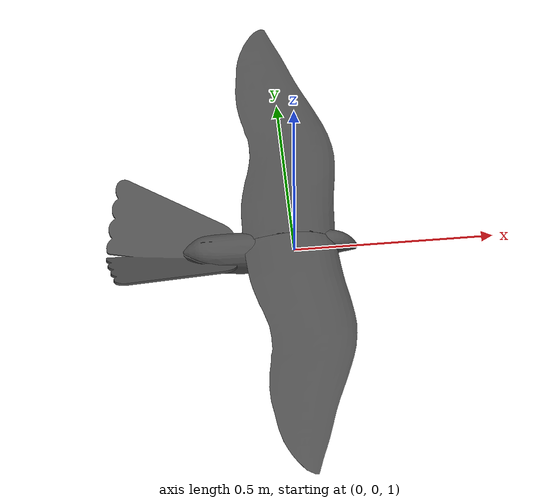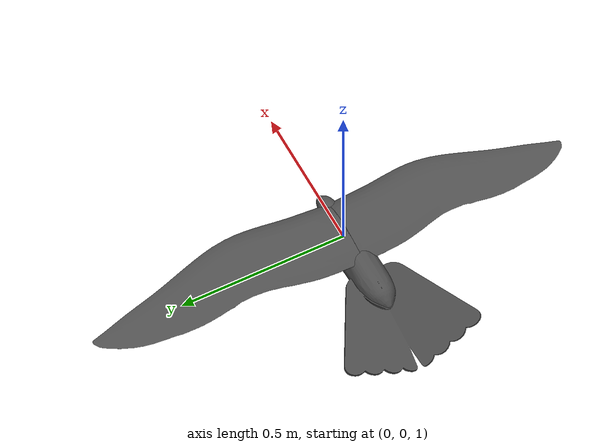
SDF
<?xml version="1.0"?>
<sdf version='1.5'>
  <model name='flapping_wing'>
    <pose>0 0 1 0 0 0</pose>
    <link name='base_link'>
      <pose>0 0 0 0 0 0</pose>
      <inertial>
        <pose>0 0 0 0 0 0</pose>
        <mass>0.28</mass>
        <inertia>
          <ixx>0.197563</ixx>
          <ixy>0</ixy>
          <ixz>0</ixz>
          <iyy>0.1458929</iyy>
          <iyz>0</iyz>
          <izz>0.1477</izz>
        </inertia>
      </inertial>
      <collision name='base_link_collision'>
        <geometry>
          <box>
            <size>0.5 0.125 0.156</size>
          </box>
        </geometry>
        <surface>
          <contact>
            <ode>
              <max_vel>15</max_vel>
              <min_depth>0.01</min_depth>
            </ode>
          </contact>
        </surface>
      </collision>
      <visual name='base_link_visual'>
        <geometry>
          <mesh>
            <scale>1 1 1</scale>
            <uri>model://flapping_wing/meshes/fuselage3.DAE</uri>
          </mesh>
        </geometry>
        <material>
          <script>
            <name>Gazebo/DarkGrey</name>
            <uri>__default__</uri>
          </script>
        </material>
      </visual>
      <gravity>1</gravity>
      <velocity_decay/>
      <self_collide>0</self_collide>
    </link>

    <link name='flapping_wing/imu_link'>
      <pose>0 0 0 0 0 0</pose>
      <inertial>
        <pose>0 0 0 0 0 0</pose>
        <mass>0.015</mass>
        <inertia>
          <ixx>1e-05</ixx>
          <ixy>0</ixy>
          <ixz>0</ixz>
          <iyy>1e-05</iyy>
          <iyz>0</iyz>
          <izz>1e-05</izz>
        </inertia>
      </inertial>
    </link>
    <joint name='flapping_wing/imu_joint' type='revolute'>
      <child>flapping_wing/imu_link</child>
      <parent>base_link</parent>
      <axis>
        <xyz>1 0 0</xyz>
        <limit>
          <lower>0</lower>
          <upper>0</upper>
          <effort>0</effort>
          <velocity>0</velocity>
        </limit>
        <dynamics>
          <spring_reference>0</spring_reference>
          <spring_stiffness>0</spring_stiffness>
        </dynamics>
        <use_parent_model_frame>1</use_parent_model_frame>
      </axis>
    </joint>

    <link name='right_wing'>
      <pose>0.10 -0.0 0.03 0 0 0</pose>
      <inertial>
        <pose>0 0 0 0 0 0</pose>
        <mass>0.00001</mass>
        <inertia>
          <ixx>0.00003</ixx>
          <ixy>0</ixy>
          <ixz>0</ixz>
          <iyy>0.001</iyy>
          <iyz>0</iyz>
          <izz>0.0000001</izz>
        </inertia>
      </inertial>
      <collision name='right_wing_collision'>
        <geometry>
          <box>
            <size>0.3 1.77 0.04</size>
          </box>
        </geometry>
      </collision>
      <visual name='right_wing_visual'>
        <geometry>
          <mesh>
            <scale>1 1 1</scale>
            <uri>model://flapping_wing/meshes/right_wing.DAE</uri>
          </mesh>
        </geometry>
        <material>
          <script>
            <name>Gazebo/DarkGrey</name>
            <uri>__default__</uri>
          </script>
        </material>
      </visual>
    </link>
    <joint name='right_wing_joint' type='revolute'>
      <child>right_wing</child>
      <parent>base_link</parent>
      <pose>0.00 0 0.00 0 0 0</pose>
      <axis>
        <xyz>1 0 0</xyz>
        <limit>
          <lower>-0.3</lower>
          <upper>0.3</upper>
        </limit>
        <dynamics>
          <damping>1.000</damping>
        </dynamics>
      </axis>
      <physics>
        <ode>
          <implicit_spring_damper>1</implicit_spring_damper>
        </ode>
      </physics>
    </joint>
    <link name='left_wing'>
      <pose>0.10 -0.0 0.03 0 0 0</pose>
      <inertial>
        <pose>0 0 0 0 0 0</pose>
        <mass>0.000001</mass>
        <inertia>
          <ixx>0.00003</ixx>
          <ixy>0</ixy>
          <ixz>0</ixz>
          <iyy>0.001</iyy>
          <iyz>0</iyz>
          <izz>0.0000001</izz>
        </inertia>
      </inertial>
      <collision name='left_wing_collision'>
        <geometry>
          <box>
            <size>0.3 1.77 0.04</size>
          </box>
        </geometry>
      </collision>
      <visual name='left_wing_visual'>
        <geometry>
          <mesh>
            <scale>1 1 1</scale>
            <uri>model://flapping_wing/meshes/left_wing.DAE</uri>
          </mesh>
        </geometry>
        <material>
          <script>
            <name>Gazebo/DarkGrey</name>
            <uri>__default__</uri>
          </script>
        </material>
      </visual>
    </link>
    <joint name='left_wing_joint' type='revolute'>
      <child>left_wing</child>
      <parent>base_link</parent>
      <pose>0.00 0 0.00 0 0 0</pose>
      <axis>
        <xyz>1 0 0</xyz>
        <limit>
          <lower>-0.3</lower>
          <upper>0.3</upper>
        </limit>
        <dynamics>
          <damping>1.000</damping>
        </dynamics>
      </axis>
      <physics>
        <ode>
          <implicit_spring_damper>1</implicit_spring_damper>
        </ode>
      </physics>
    </joint>

    <link name='tail'>
      <pose>0.05 0.0 -0.05 3.95 0.2 0.07</pose>
      <inertial>
        <pose>0 0 0 0 0 0</pose>
        <mass>0.000001</mass>
        <inertia>
          <ixx>0.00003</ixx>
          <ixy>0</ixy>
          <ixz>0</ixz>
          <iyy>0.001</iyy>
          <iyz>0</iyz>
          <izz>0.0000001</izz>
        </inertia>
      </inertial>
      <visual name='tail_visual'>
        <geometry>
          <mesh>
            <scale>1 1 1</scale>
            <uri>model://flapping_wing/meshes/tail.DAE</uri>
          </mesh>
        </geometry>
        <material>
          <script>
            <name>Gazebo/DarkGrey</name>
            <uri>__default__</uri>
          </script>
        </material>
      </visual>
    </link>
    <joint name='tail_joint' type='revolute'>
      <child>tail</child>
      <parent>base_link</parent>
      <pose>0.00 0 0.00 0 0 0</pose>
      <axis>
        <xyz>1 0 0</xyz>
        <limit>
          <lower>-0</lower>
          <upper>0</upper>
        </limit>
        <dynamics>
          <damping>1.000</damping>
        </dynamics>
      </axis>
      <physics>
        <ode>
          <implicit_spring_damper>1</implicit_spring_damper>
        </ode>
      </physics>
    </joint>

    <link name='virtual_left_tail'>
      <pose>-0.1 0.0 0.1 -0.05 0 0 0</pose>
      <inertial>
        <mass>0.00000001</mass>
        <inertia>
          <ixx>0.000001</ixx>
          <ixy>0.0</ixy>
          <iyy>0.000001</iyy>
          <ixz>0.0</ixz>
          <iyz>0.0</iyz>
          <izz>0.000001</izz>
        </inertia>
      </inertial>
    </link>
    <joint name='virtual_left_tail_joint' type='revolute'>
      <child>virtual_left_tail</child>
      <parent>base_link</parent>
      <pose>0.00 0 0.00 0 0 0</pose>
      <axis>
        <xyz>1 0 0</xyz>
        <limit>
          <lower>-0.3</lower>
          <upper>0.3</upper>
        </limit>
        <dynamics>
          <damping>1.000</damping>
        </dynamics>
      </axis>
      <physics>
        <ode>
          <implicit_spring_damper>1</implicit_spring_damper>
        </ode>
      </physics>
    </joint>
    <link name='virtual_right_tail'>
      <pose>-0.1 0.0 0.1 -0.05 0 0 0</pose>
      <inertial>
        <mass>0.00000001</mass>
        <inertia>
          <ixx>0.000001</ixx>
          <ixy>0.0</ixy>
          <iyy>0.000001</iyy>
          <ixz>0.0</ixz>
          <iyz>0.0</iyz>
          <izz>0.000001</izz>
        </inertia>
      </inertial>
    </link>
    <joint name='virtual_right_tail_joint' type='revolute'>
      <child>virtual_right_tail</child>
      <parent>base_link</parent>
      <pose>0.00 0 0.00 0 0 0</pose>
      <axis>
        <xyz>1 0 0</xyz>
        <limit>
          <lower>-0.3</lower>
          <upper>0.3</upper>
        </limit>
        <dynamics>
          <damping>1.000</damping>
        </dynamics>
      </axis>
      <physics>
        <ode>
          <implicit_spring_damper>1</implicit_spring_damper>
        </ode>
      </physics>
    </joint>

   <plugin name='flap' filename='libgazebo_flapping_control.so'>
      <robotNamespace></robotNamespace>
      <commandSubTopic>/gazebo/command/motor_speed</commandSubTopic>
      <motorNumber>4</motorNumber>
      <leftwing>left_wing_joint</leftwing>
      <rightwing>right_wing_joint</rightwing>
      <amplitude>0.3</amplitude>
      <wingspan>1.2</wingspan>
      <a0>0.05984281113</a0>
      <lcp>-0.05 0.1 0.05</lcp>
      <rcp>-0.05 -0.1 0.05</rcp>
      <twist>0.05</twist>
      <chord>0.225</chord>
      <link_name>base_link</link_name>
      <frequency>0</frequency>
      <forward>1 0 0</forward>
      <upward>0 0 1</upward>
      <rho>1.295</rho>
      <radial_symmetry>0</radial_symmetry>
   </plugin>

    <plugin name="left_tail" filename="libLiftDragPlugin.so">
      <a0>0.05984281113</a0>
      <cla>4.752798721</cla>
      <cda>0.6417112299</cda>
      <cma>-1.8</cma>
      <alpha_stall>0.3391428111</alpha_stall>
      <cla_stall>-3.85</cla_stall>
      <cda_stall>-0.9233984055</cda_stall>
      <cma_stall>0</cma_stall>
      <cp>-0.05 0.3 0.05</cp>
      <area>0.01</area>
      <air_density>1.2041</air_density>
      <forward>1 0 0</forward>
      <upward>0 0 1</upward>
      <link_name>base_link</link_name>
      <control_joint_name>
        virtual_left_tail_joint
      </control_joint_name>
      <control_joint_rad_to_cl>-0.5</control_joint_rad_to_cl>
    </plugin>

    <plugin name="right_tail" filename="libLiftDragPlugin.so">
      <a0>0.05984281113</a0>
      <cla>4.752798721</cla>
      <cda>0.6417112299</cda>
      <cma>-1.8</cma>
      <alpha_stall>0.3391428111</alpha_stall>
      <cla_stall>-3.85</cla_stall>
      <cda_stall>-0.9233984055</cda_stall>
      <cma_stall>0</cma_stall>
      <cp>-0.05 -0.3 0.05</cp>
      <area>0.01</area>
      <air_density>1.2041</air_density>
      <forward>1 0 0</forward>
      <upward>0 0 1</upward>
      <link_name>base_link</link_name>
      <control_joint_name>
        virtual_right_tail_joint
      </control_joint_name>
      <control_joint_rad_to_cl>-0.5</control_joint_rad_to_cl>
    </plugin>

    <plugin name='gazebo_imu_plugin' filename='libgazebo_imu_plugin.so'>
      <robotNamespace></robotNamespace>
      <linkName>flapping_wing/imu_link</linkName>
      <imuTopic>/imu</imuTopic>
      <gyroscopeNoiseDensity>0.0003394</gyroscopeNoiseDensity>
      <gyroscopeRandomWalk>3.8785e-05</gyroscopeRandomWalk>
      <gyroscopeBiasCorrelationTime>1000.0</gyroscopeBiasCorrelationTime>
      <gyroscopeTurnOnBiasSigma>0.0087</gyroscopeTurnOnBiasSigma>
      <accelerometerNoiseDensity>0.004</accelerometerNoiseDensity>
      <accelerometerRandomWalk>0.006</accelerometerRandomWalk>
      <accelerometerBiasCorrelationTime>300.0</accelerometerBiasCorrelationTime>
      <accelerometerTurnOnBiasSigma>0.196</accelerometerTurnOnBiasSigma>
    </plugin>

    <plugin name="gps_plugin" filename="libgazebo_gps_plugin.so">
        <robotNamespace></robotNamespace>
        <gpsNoise>true</gpsNoise>
    </plugin>

    <plugin name='magnetometer_plugin' filename='libgazebo_magnetometer_plugin.so'>
      <robotNamespace/>
      <pubRate>20</pubRate>
      <noiseDensity>0.0004</noiseDensity>
      <randomWalk>6.4e-06</randomWalk>
      <biasCorrelationTime>600</biasCorrelationTime>
      <magTopic>/mag</magTopic>
    </plugin>

    <plugin name='barometer_plugin' filename='libgazebo_barometer_plugin.so'>
      <robotNamespace/>
      <pubRate>10</pubRate>
      <baroTopic>/baro</baroTopic>
    </plugin>

    <plugin name='mavlink_interface' filename='libgazebo_mavlink_interface.so'>
      <robotNamespace></robotNamespace>
      <baselink>base_link</baselink>
      <imuSubTopic>/imu</imuSubTopic>
      <gpsSubTopic>/gps</gpsSubTopic>
      <magSubTopic>/mag</magSubTopic>
      <baroSubTopic>/baro</baroSubTopic>
      <mavlink_addr>INADDR_ANY</mavlink_addr>
      <mavlink_udp_port>14560</mavlink_udp_port>
      <serialEnabled>false</serialEnabled>
      <serialDevice>/dev/ttyACM0</serialDevice>
      <baudRate>921600</baudRate>
      <qgc_addr>INADDR_ANY</qgc_addr>
      <qgc_udp_port>14550</qgc_udp_port>
      <sdk_addr>INADDR_ANY</sdk_addr>
      <sdk_udp_port>14540</sdk_udp_port>
      <hil_mode>false</hil_mode>
      <hil_state_level>false</hil_state_level>
      <enable_lockstep>true</enable_lockstep>
      <use_tcp>true</use_tcp>
      <motorSpeedCommandPubTopic>/gazebo/command/motor_speed</motorSpeedCommandPubTopic>
      <control_channels>
        <channel name="flapwing">
          <input_index>4</input_index>
          <input_offset>0</input_offset>
          <input_scaling>0</input_scaling>
          <zero_position_disarmed>0</zero_position_disarmed>
          <zero_position_armed>0</zero_position_armed>
          <joint_control_type>position_kinematic</joint_control_type>
          <joint_name>tail_joint</joint_name>
        </channel>
        <channel name="left_tail">
          <input_index>2</input_index>
          <input_offset>0</input_offset>
          <input_scaling>1</input_scaling>
          <zero_position_disarmed>0</zero_position_disarmed>
          <zero_position_armed>0</zero_position_armed>
          <joint_control_type>position_kinematic</joint_control_type>
          <joint_name>virtual_left_tail_joint</joint_name>
        </channel>
        <channel name="right_tail">
          <input_index>3</input_index>
          <input_offset>0</input_offset>
          <input_scaling>1</input_scaling>
          <zero_position_disarmed>0</zero_position_disarmed>
          <zero_position_armed>0</zero_position_armed>
          <joint_control_type>position_kinematic</joint_control_type>
          <joint_name>virtual_right_tail_joint</joint_name>
        </channel>
      </control_channels>
    </plugin>
  </model>
</sdf>
